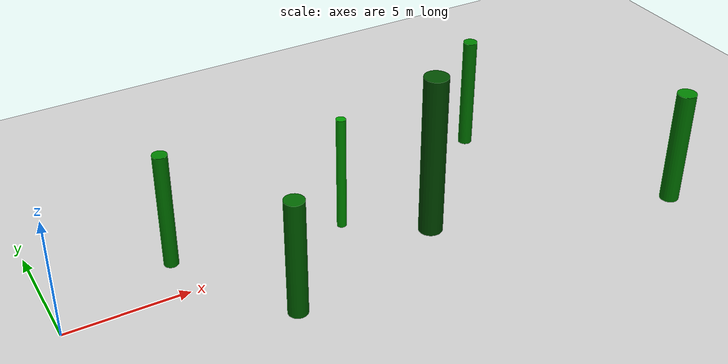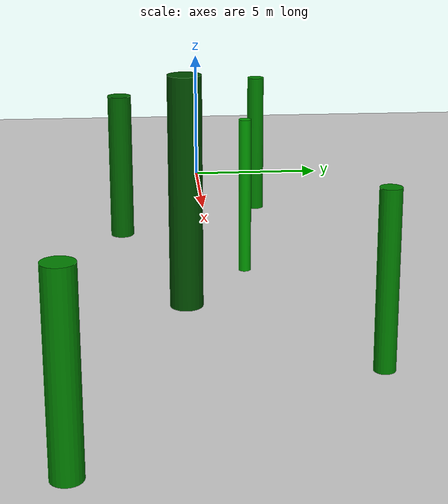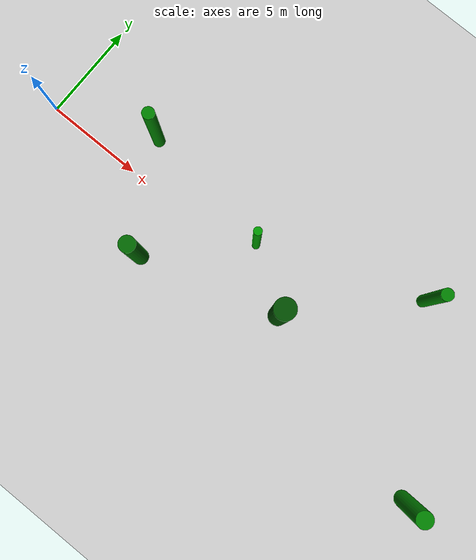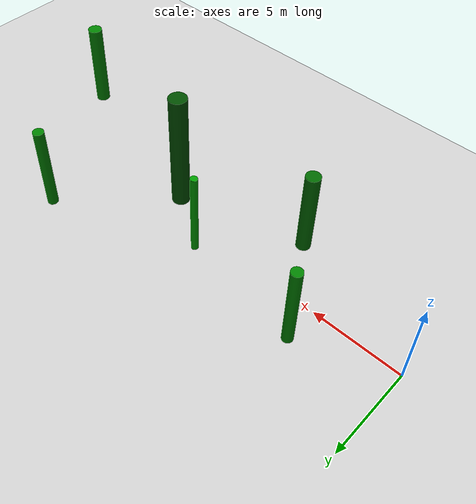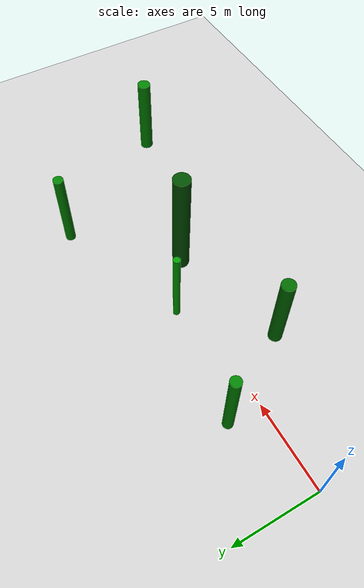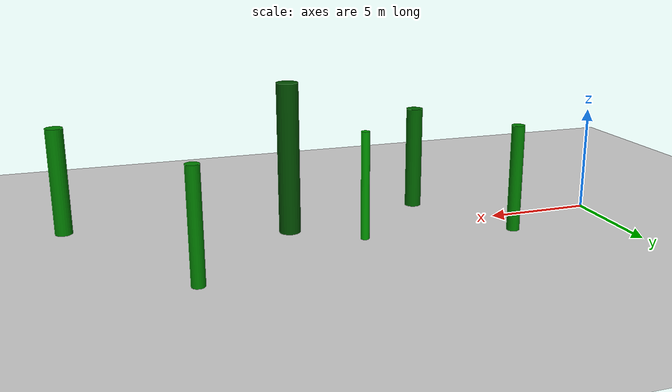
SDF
<sdf version="1.9">
 <world name="forest_65mm">
  <physics name="1ms" type="ignored">
   <max_step_size>0.001</max_step_size>
   <real_time_factor>1.0</real_time_factor>
  </physics>
  <plugin name="gz::sim::systems::Physics" filename="gz-sim-physics-system"/>
  <plugin name="gz::sim::systems::UserCommands" filename="gz-sim-user-commands-system"/>
  <plugin name="gz::sim::systems::SceneBroadcaster" filename="gz-sim-scene-broadcaster-system"/>
  <plugin name="gz::sim::systems::Sensors" filename="gz-sim-sensors-system">
   <render_engine>ogre2</render_engine>
  </plugin>
  <plugin name="gz::sim::systems::Imu" filename="gz-sim-imu-system"/>
  <light type="directional" name="sun">
   <pose>0 0 10 0 0 0</pose>
   <diffuse>0.8 0.8 0.8 1</diffuse>
   <specular>0.2 0.2 0.2 1</specular>
   <attenuation>
    <range>1000</range>
    <constant>0.9</constant>
    <linear>0.01</linear>
    <quadratic>0.001</quadratic>
   </attenuation>
   <direction>-0.5 0.1 -0.9</direction>
  </light>
  <model name="ground_plane">
   <static>true</static>
   <link name="link">
    <collision name="collision">
     <geometry><plane><normal>0 0 1</normal><size>100 100</size></plane></geometry>
    </collision>
    <visual name="visual">
     <geometry><plane><normal>0 0 1</normal><size>100 100</size></plane></geometry>
     <material>
      <ambient>0.8 0.8 0.8 1</ambient>
      <diffuse>0.8 0.8 0.8 1</diffuse>
      <specular>0.8 0.8 0.8 1</specular>
     </material>
    </visual>
   </link>
  </model>
  <model name="tree_1">
   <static>true</static>
   <pose>5 2 2.5 0 0 0</pose>
   <link name="link">
    <visual name="visual">
     <geometry><cylinder><radius>0.3</radius><length>5</length></cylinder></geometry>
     <material><ambient>0 0.5 0 1</ambient><diffuse>0 0.5 0 1</diffuse></material>
    </visual>
    <collision name="collision">
     <geometry><cylinder><radius>0.3</radius><length>5</length></cylinder></geometry>
    </collision>
   </link>
  </model>
  <model name="tree_2">
   <static>true</static>
   <pose>8 -3 2.5 0 0 0</pose>
   <link name="link">
    <visual name="visual">
     <geometry><cylinder><radius>0.4</radius><length>5</length></cylinder></geometry>
     <material><ambient>0 0.4 0 1</ambient><diffuse>0 0.4 0 1</diffuse></material>
    </visual>
    <collision name="collision">
     <geometry><cylinder><radius>0.4</radius><length>5</length></cylinder></geometry>
    </collision>
   </link>
  </model>
  <model name="tree_3">
   <static>true</static>
   <pose>12 1 2.5 0 0 0</pose>
   <link name="link">
    <visual name="visual">
     <geometry><cylinder><radius>0.2</radius><length>5</length></cylinder></geometry>
     <material><ambient>0 0.6 0 1</ambient><diffuse>0 0.6 0 1</diffuse></material>
    </visual>
    <collision name="collision">
     <geometry><cylinder><radius>0.2</radius><length>5</length></cylinder></geometry>
    </collision>
   </link>
  </model>
  <model name="tree_4">
   <static>true</static>
   <pose>15 -1 3.5 0 0 0</pose>
   <link name="link">
    <visual name="visual">
     <geometry><cylinder><radius>0.5</radius><length>7</length></cylinder></geometry>
     <material><ambient>0 0.3 0 1</ambient><diffuse>0 0.3 0 1</diffuse></material>
    </visual>
    <collision name="collision">
     <geometry><cylinder><radius>0.5</radius><length>7</length></cylinder></geometry>
    </collision>
   </link>
  </model>
  <model name="tree_5">
   <static>true</static>
   <pose>20 4 2.5 0 0 0</pose>
   <link name="link">
    <visual name="visual">
     <geometry><cylinder><radius>0.3</radius><length>5</length></cylinder></geometry>
     <material><ambient>0 0.5 0 1</ambient><diffuse>0 0.5 0 1</diffuse></material>
    </visual>
    <collision name="collision">
     <geometry><cylinder><radius>0.3</radius><length>5</length></cylinder></geometry>
    </collision>
   </link>
  </model>
  <model name="tree_6">
   <static>true</static>
   <pose>25 -4 2.5 0 0 0</pose>
   <link name="link">
    <visual name="visual">
     <geometry><cylinder><radius>0.4</radius><length>5</length></cylinder></geometry>
     <material><ambient>0 0.5 0 1</ambient><diffuse>0 0.5 0 1</diffuse></material>
    </visual>
    <collision name="collision">
     <geometry><cylinder><radius>0.4</radius><length>5</length></cylinder></geometry>
    </collision>
   </link>
  </model>
 </world>
</sdf>
